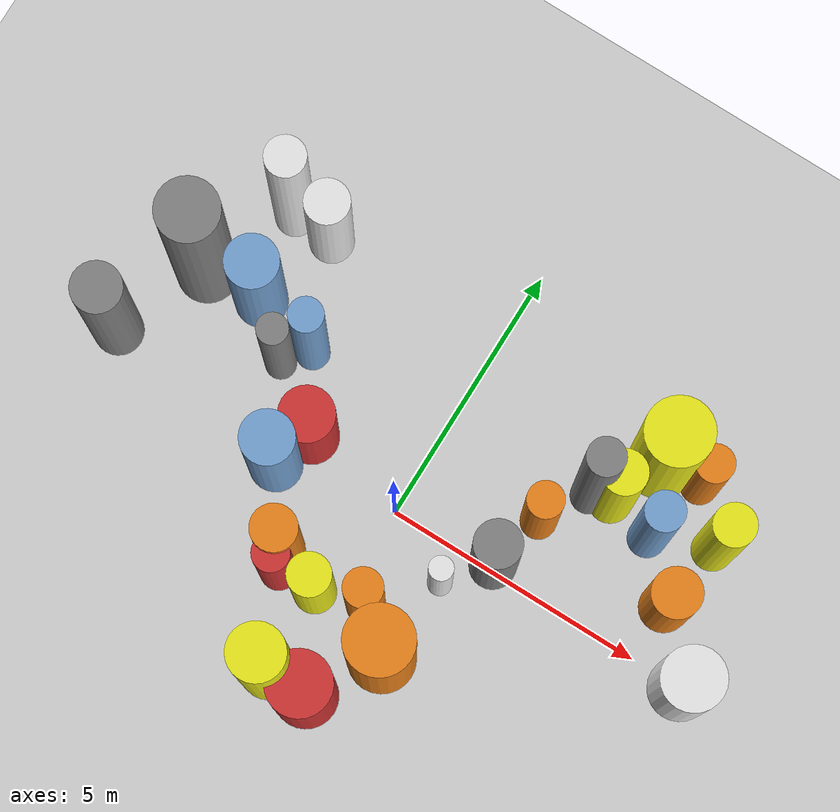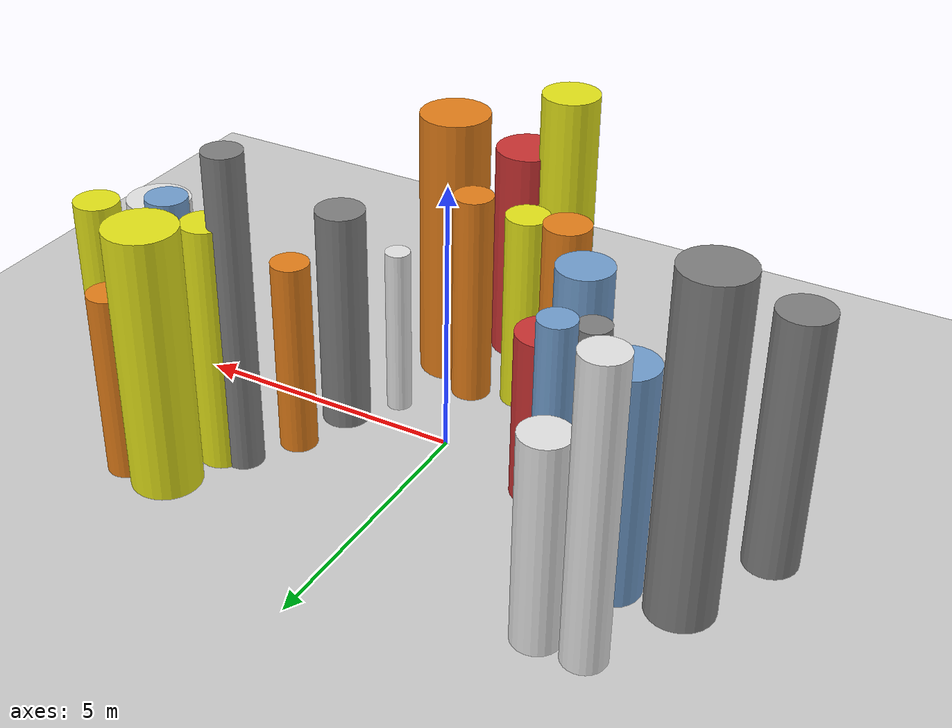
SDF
<?xml version='1.0'?>
<sdf version='1.6'>
  <world name='routeA_rl_v1__dense_recovery__rl_train__s_turn_multi_obstacle__000094'>
    <!-- Sun light -->
    <light name='sun' type='directional'>
      <cast_shadows>1</cast_shadows>
      <pose>0 0 10 0 0 0</pose>
      <diffuse>0.8 0.8 0.8 1</diffuse>
      <specular>0.2 0.2 0.2 1</specular>
      <attenuation>
        <range>1000</range>
        <constant>0.9</constant>
        <linear>0.01</linear>
        <quadratic>0.001</quadratic>
      </attenuation>
      <direction>-0.5 0.1 -0.9</direction>
    </light>

    <!-- Ground plane -->
    <model name='ground_plane'>
      <static>1</static>
      <link name='link'>
        <collision name='collision'>
          <geometry>
            <plane>
              <normal>0 0 1</normal>
              <size>100 100</size>
            </plane>
          </geometry>
          <surface>
            <contact>
              <collide_bitmask>65535</collide_bitmask>
              <ode/>
            </contact>
            <friction>
              <ode>
                <mu>100</mu>
                <mu2>50</mu2>
              </ode>
              <torsional><ode/></torsional>
            </friction>
            <bounce/>
          </surface>
          <max_contacts>10</max_contacts>
        </collision>
        <visual name='visual'>
          <cast_shadows>0</cast_shadows>
          <geometry>
            <plane>
              <normal>0 0 1</normal>
              <size>100 100</size>
            </plane>
          </geometry>
          <material>
            <script>
              <uri>file://media/materials/scripts/gazebo.material</uri>
              <n>Gazebo/Grey</n>
            </script>
          </material>
        </visual>
      </link>
    </model>

    <!-- Environment -->
    <magnetic_field>6e-06 2.3e-05 -4.2e-05</magnetic_field>
    <atmosphere type='adiabatic'/>
    <physics name='default_physics' default='0' type='ode'>
      <gravity>0 0 -9.8</gravity>
      <max_step_size>0.004</max_step_size>
      <real_time_factor>1</real_time_factor>
      <real_time_update_rate>250</real_time_update_rate>
    </physics>
    <scene>
      <ambient>0.4 0.4 0.4 1</ambient>
      <background>0.7 0.7 0.7 1</background>
      <shadows>1</shadows>
    </scene>
    <wind/>
    <spherical_coordinates>
      <surface_model>EARTH_WGS84</surface_model>
      <latitude_deg>0</latitude_deg>
      <longitude_deg>0</longitude_deg>
      <elevation>0</elevation>
      <heading_deg>0</heading_deg>
    </spherical_coordinates>

    <!-- ============ OBSTACLES (28) ============ -->
    <model name='s_turn_obs_0'>
      <static>1</static>
      <link name='link'>
        <visual name='visual'>
          <geometry>
            <cylinder>
              <radius>0.4625</radius>
              <length>4.6389</length>
            </cylinder>
          </geometry>
          <material>
            <script>
              <n>Gazebo/Grey</n>
              <uri>file://media/materials/scripts/gazebo.material</uri>
            </script>
            <ambient>0.5 0.5 0.5 1</ambient>
          </material>
        </visual>
        <collision name='collision'>
          <geometry>
            <cylinder>
              <radius>0.4625</radius>
              <length>4.6389</length>
            </cylinder>
          </geometry>
          <max_contacts>10</max_contacts>
          <surface>
            <contact><ode/></contact>
            <bounce/>
            <friction>
              <ode><mu>1</mu><mu2>1</mu2></ode>
              <torsional><ode/></torsional>
            </friction>
          </surface>
        </collision>
      </link>
      <pose>-6.0000 0.1688 2.3194 0 0 0.0000</pose>
    </model>

    <model name='s_turn_obs_1'>
      <static>1</static>
      <link name='link'>
        <visual name='visual'>
          <geometry>
            <cylinder>
              <radius>0.5721</radius>
              <length>5.9832</length>
            </cylinder>
          </geometry>
          <material>
            <script>
              <n>Gazebo/Grey</n>
              <uri>file://media/materials/scripts/gazebo.material</uri>
            </script>
            <ambient>0.5 0.5 0.5 1</ambient>
          </material>
        </visual>
        <collision name='collision'>
          <geometry>
            <cylinder>
              <radius>0.5721</radius>
              <length>5.9832</length>
            </cylinder>
          </geometry>
          <max_contacts>10</max_contacts>
          <surface>
            <contact><ode/></contact>
            <bounce/>
            <friction>
              <ode><mu>1</mu><mu2>1</mu2></ode>
              <torsional><ode/></torsional>
            </friction>
          </surface>
        </collision>
      </link>
      <pose>-5.2000 1.9225 2.9916 0 0 0.0000</pose>
    </model>

    <model name='s_turn_obs_2'>
      <static>1</static>
      <link name='link'>
        <visual name='visual'>
          <geometry>
            <cylinder>
              <radius>0.3735</radius>
              <length>5.3352</length>
            </cylinder>
          </geometry>
          <material>
            <script>
              <n>Gazebo/White</n>
              <uri>file://media/materials/scripts/gazebo.material</uri>
            </script>
            <ambient>0.9 0.9 0.9 1</ambient>
          </material>
        </visual>
        <collision name='collision'>
          <geometry>
            <cylinder>
              <radius>0.3735</radius>
              <length>5.3352</length>
            </cylinder>
          </geometry>
          <max_contacts>10</max_contacts>
          <surface>
            <contact><ode/></contact>
            <bounce/>
            <friction>
              <ode><mu>1</mu><mu2>1</mu2></ode>
              <torsional><ode/></torsional>
            </friction>
          </surface>
        </collision>
      </link>
      <pose>-4.4000 3.6335 2.6676 0 0 0.0000</pose>
    </model>

    <model name='s_turn_obs_3'>
      <static>1</static>
      <link name='link'>
        <visual name='visual'>
          <geometry>
            <cylinder>
              <radius>0.4163</radius>
              <length>3.7390</length>
            </cylinder>
          </geometry>
          <material>
            <script>
              <n>Gazebo/White</n>
              <uri>file://media/materials/scripts/gazebo.material</uri>
            </script>
            <ambient>0.9 0.9 0.9 1</ambient>
          </material>
        </visual>
        <collision name='collision'>
          <geometry>
            <cylinder>
              <radius>0.4163</radius>
              <length>3.7390</length>
            </cylinder>
          </geometry>
          <max_contacts>10</max_contacts>
          <surface>
            <contact><ode/></contact>
            <bounce/>
            <friction>
              <ode><mu>1</mu><mu2>1</mu2></ode>
              <torsional><ode/></torsional>
            </friction>
          </surface>
        </collision>
      </link>
      <pose>-3.6000 3.5991 1.8695 0 0 0.0000</pose>
    </model>

    <model name='s_turn_obs_4'>
      <static>1</static>
      <link name='link'>
        <visual name='visual'>
          <geometry>
            <cylinder>
              <radius>0.3189</radius>
              <length>4.3099</length>
            </cylinder>
          </geometry>
          <material>
            <script>
              <n>Gazebo/Blue</n>
              <uri>file://media/materials/scripts/gazebo.material</uri>
            </script>
            <ambient>0.447 0.624 0.812 1</ambient>
          </material>
        </visual>
        <collision name='collision'>
          <geometry>
            <cylinder>
              <radius>0.3189</radius>
              <length>4.3099</length>
            </cylinder>
          </geometry>
          <max_contacts>10</max_contacts>
          <surface>
            <contact><ode/></contact>
            <bounce/>
            <friction>
              <ode><mu>1</mu><mu2>1</mu2></ode>
              <torsional><ode/></torsional>
            </friction>
          </surface>
        </collision>
      </link>
      <pose>-2.8000 1.6778 2.1549 0 0 0.0000</pose>
    </model>

    <model name='s_turn_obs_5'>
      <static>1</static>
      <link name='link'>
        <visual name='visual'>
          <geometry>
            <cylinder>
              <radius>0.5085</radius>
              <length>3.1284</length>
            </cylinder>
          </geometry>
          <material>
            <script>
              <n>Gazebo/Red</n>
              <uri>file://media/materials/scripts/gazebo.material</uri>
            </script>
            <ambient>0.8 0.2 0.2 1</ambient>
          </material>
        </visual>
        <collision name='collision'>
          <geometry>
            <cylinder>
              <radius>0.5085</radius>
              <length>3.1284</length>
            </cylinder>
          </geometry>
          <max_contacts>10</max_contacts>
          <surface>
            <contact><ode/></contact>
            <bounce/>
            <friction>
              <ode><mu>1</mu><mu2>1</mu2></ode>
              <torsional><ode/></torsional>
            </friction>
          </surface>
        </collision>
      </link>
      <pose>-2.0000 0.3688 1.5642 0 0 0.0000</pose>
    </model>

    <model name='s_turn_obs_6'>
      <static>1</static>
      <link name='link'>
        <visual name='visual'>
          <geometry>
            <cylinder>
              <radius>0.3388</radius>
              <length>3.7302</length>
            </cylinder>
          </geometry>
          <material>
            <script>
              <n>Gazebo/Red</n>
              <uri>file://media/materials/scripts/gazebo.material</uri>
            </script>
            <ambient>0.8 0.2 0.2 1</ambient>
          </material>
        </visual>
        <collision name='collision'>
          <geometry>
            <cylinder>
              <radius>0.3388</radius>
              <length>3.7302</length>
            </cylinder>
          </geometry>
          <max_contacts>10</max_contacts>
          <surface>
            <contact><ode/></contact>
            <bounce/>
            <friction>
              <ode><mu>1</mu><mu2>1</mu2></ode>
              <torsional><ode/></torsional>
            </friction>
          </surface>
        </collision>
      </link>
      <pose>-1.2000 -2.0162 1.8651 0 0 0.0000</pose>
    </model>

    <model name='s_turn_obs_7'>
      <static>1</static>
      <link name='link'>
        <visual name='visual'>
          <geometry>
            <cylinder>
              <radius>0.5207</radius>
              <length>5.3450</length>
            </cylinder>
          </geometry>
          <material>
            <script>
              <n>Gazebo/Yellow</n>
              <uri>file://media/materials/scripts/gazebo.material</uri>
            </script>
            <ambient>0.9 0.9 0.1 1</ambient>
          </material>
        </visual>
        <collision name='collision'>
          <geometry>
            <cylinder>
              <radius>0.5207</radius>
              <length>5.3450</length>
            </cylinder>
          </geometry>
          <max_contacts>10</max_contacts>
          <surface>
            <contact><ode/></contact>
            <bounce/>
            <friction>
              <ode><mu>1</mu><mu2>1</mu2></ode>
              <torsional><ode/></torsional>
            </friction>
          </surface>
        </collision>
      </link>
      <pose>-0.4000 -3.6158 2.6725 0 0 0.0000</pose>
    </model>

    <model name='s_turn_obs_8'>
      <static>1</static>
      <link name='link'>
        <visual name='visual'>
          <geometry>
            <cylinder>
              <radius>0.5943</radius>
              <length>4.1238</length>
            </cylinder>
          </geometry>
          <material>
            <script>
              <n>Gazebo/Red</n>
              <uri>file://media/materials/scripts/gazebo.material</uri>
            </script>
            <ambient>0.8 0.2 0.2 1</ambient>
          </material>
        </visual>
        <collision name='collision'>
          <geometry>
            <cylinder>
              <radius>0.5943</radius>
              <length>4.1238</length>
            </cylinder>
          </geometry>
          <max_contacts>10</max_contacts>
          <surface>
            <contact><ode/></contact>
            <bounce/>
            <friction>
              <ode><mu>1</mu><mu2>1</mu2></ode>
              <torsional><ode/></torsional>
            </friction>
          </surface>
        </collision>
      </link>
      <pose>0.4000 -3.6416 2.0619 0 0 0.0000</pose>
    </model>

    <model name='s_turn_obs_9'>
      <static>1</static>
      <link name='link'>
        <visual name='visual'>
          <geometry>
            <cylinder>
              <radius>0.6272</radius>
              <length>5.1122</length>
            </cylinder>
          </geometry>
          <material>
            <script>
              <n>Gazebo/Orange</n>
              <uri>file://media/materials/scripts/gazebo.material</uri>
            </script>
            <ambient>0.9 0.5 0.1 1</ambient>
          </material>
        </visual>
        <collision name='collision'>
          <geometry>
            <cylinder>
              <radius>0.6272</radius>
              <length>5.1122</length>
            </cylinder>
          </geometry>
          <max_contacts>10</max_contacts>
          <surface>
            <contact><ode/></contact>
            <bounce/>
            <friction>
              <ode><mu>1</mu><mu2>1</mu2></ode>
              <torsional><ode/></torsional>
            </friction>
          </surface>
        </collision>
      </link>
      <pose>1.2000 -2.3657 2.5561 0 0 0.0000</pose>
    </model>

    <model name='s_turn_obs_10'>
      <static>1</static>
      <link name='link'>
        <visual name='visual'>
          <geometry>
            <cylinder>
              <radius>0.4339</radius>
              <length>4.1385</length>
            </cylinder>
          </geometry>
          <material>
            <script>
              <n>Gazebo/Grey</n>
              <uri>file://media/materials/scripts/gazebo.material</uri>
            </script>
            <ambient>0.5 0.5 0.5 1</ambient>
          </material>
        </visual>
        <collision name='collision'>
          <geometry>
            <cylinder>
              <radius>0.4339</radius>
              <length>4.1385</length>
            </cylinder>
          </geometry>
          <max_contacts>10</max_contacts>
          <surface>
            <contact><ode/></contact>
            <bounce/>
            <friction>
              <ode><mu>1</mu><mu2>1</mu2></ode>
              <torsional><ode/></torsional>
            </friction>
          </surface>
        </collision>
      </link>
      <pose>2.0000 0.1138 2.0692 0 0 0.0000</pose>
    </model>

    <model name='s_turn_obs_11'>
      <static>1</static>
      <link name='link'>
        <visual name='visual'>
          <geometry>
            <cylinder>
              <radius>0.3423</radius>
              <length>5.8359</length>
            </cylinder>
          </geometry>
          <material>
            <script>
              <n>Gazebo/Grey</n>
              <uri>file://media/materials/scripts/gazebo.material</uri>
            </script>
            <ambient>0.5 0.5 0.5 1</ambient>
          </material>
        </visual>
        <collision name='collision'>
          <geometry>
            <cylinder>
              <radius>0.3423</radius>
              <length>5.8359</length>
            </cylinder>
          </geometry>
          <max_contacts>10</max_contacts>
          <surface>
            <contact><ode/></contact>
            <bounce/>
            <friction>
              <ode><mu>1</mu><mu2>1</mu2></ode>
              <torsional><ode/></torsional>
            </friction>
          </surface>
        </collision>
      </link>
      <pose>2.8000 2.1082 2.9180 0 0 0.0000</pose>
    </model>

    <model name='s_turn_obs_12'>
      <static>1</static>
      <link name='link'>
        <visual name='visual'>
          <geometry>
            <cylinder>
              <radius>0.6175</radius>
              <length>4.8262</length>
            </cylinder>
          </geometry>
          <material>
            <script>
              <n>Gazebo/Yellow</n>
              <uri>file://media/materials/scripts/gazebo.material</uri>
            </script>
            <ambient>0.9 0.9 0.1 1</ambient>
          </material>
        </visual>
        <collision name='collision'>
          <geometry>
            <cylinder>
              <radius>0.6175</radius>
              <length>4.8262</length>
            </cylinder>
          </geometry>
          <max_contacts>10</max_contacts>
          <surface>
            <contact><ode/></contact>
            <bounce/>
            <friction>
              <ode><mu>1</mu><mu2>1</mu2></ode>
              <torsional><ode/></torsional>
            </friction>
          </surface>
        </collision>
      </link>
      <pose>3.6000 3.2498 2.4131 0 0 0.0000</pose>
    </model>

    <model name='s_turn_obs_13'>
      <static>1</static>
      <link name='link'>
        <visual name='visual'>
          <geometry>
            <cylinder>
              <radius>0.3477</radius>
              <length>3.4438</length>
            </cylinder>
          </geometry>
          <material>
            <script>
              <n>Gazebo/Orange</n>
              <uri>file://media/materials/scripts/gazebo.material</uri>
            </script>
            <ambient>0.9 0.5 0.1 1</ambient>
          </material>
        </visual>
        <collision name='collision'>
          <geometry>
            <cylinder>
              <radius>0.3477</radius>
              <length>3.4438</length>
            </cylinder>
          </geometry>
          <max_contacts>10</max_contacts>
          <surface>
            <contact><ode/></contact>
            <bounce/>
            <friction>
              <ode><mu>1</mu><mu2>1</mu2></ode>
              <torsional><ode/></torsional>
            </friction>
          </surface>
        </collision>
      </link>
      <pose>4.4000 3.3093 1.7219 0 0 0.0000</pose>
    </model>

    <model name='s_turn_obs_14'>
      <static>1</static>
      <link name='link'>
        <visual name='visual'>
          <geometry>
            <cylinder>
              <radius>0.3871</radius>
              <length>4.5110</length>
            </cylinder>
          </geometry>
          <material>
            <script>
              <n>Gazebo/Yellow</n>
              <uri>file://media/materials/scripts/gazebo.material</uri>
            </script>
            <ambient>0.9 0.9 0.1 1</ambient>
          </material>
        </visual>
        <collision name='collision'>
          <geometry>
            <cylinder>
              <radius>0.3871</radius>
              <length>4.5110</length>
            </cylinder>
          </geometry>
          <max_contacts>10</max_contacts>
          <surface>
            <contact><ode/></contact>
            <bounce/>
            <friction>
              <ode><mu>1</mu><mu2>1</mu2></ode>
              <torsional><ode/></torsional>
            </friction>
          </surface>
        </collision>
      </link>
      <pose>5.2000 2.4418 2.2555 0 0 0.0000</pose>
    </model>

    <model name='s_turn_obs_15'>
      <static>1</static>
      <link name='link'>
        <visual name='visual'>
          <geometry>
            <cylinder>
              <radius>0.5892</radius>
              <length>3.2807</length>
            </cylinder>
          </geometry>
          <material>
            <script>
              <n>Gazebo/White</n>
              <uri>file://media/materials/scripts/gazebo.material</uri>
            </script>
            <ambient>0.9 0.9 0.9 1</ambient>
          </material>
        </visual>
        <collision name='collision'>
          <geometry>
            <cylinder>
              <radius>0.5892</radius>
              <length>3.2807</length>
            </cylinder>
          </geometry>
          <max_contacts>10</max_contacts>
          <surface>
            <contact><ode/></contact>
            <bounce/>
            <friction>
              <ode><mu>1</mu><mu2>1</mu2></ode>
              <torsional><ode/></torsional>
            </friction>
          </surface>
        </collision>
      </link>
      <pose>6.0000 0.0033 1.6404 0 0 0.0000</pose>
    </model>

    <model name='s_turn_obs2_0'>
      <static>1</static>
      <link name='link'>
        <visual name='visual'>
          <geometry>
            <cylinder>
              <radius>0.2130</radius>
              <length>3.8375</length>
            </cylinder>
          </geometry>
          <material>
            <script>
              <n>Gazebo/Grey</n>
              <uri>file://media/materials/scripts/gazebo.material</uri>
            </script>
            <ambient>0.5 0.5 0.5 1</ambient>
          </material>
        </visual>
        <collision name='collision'>
          <geometry>
            <cylinder>
              <radius>0.2130</radius>
              <length>3.8375</length>
            </cylinder>
          </geometry>
          <max_contacts>10</max_contacts>
          <surface>
            <contact><ode/></contact>
            <bounce/>
            <friction>
              <ode><mu>1</mu><mu2>1</mu2></ode>
              <torsional><ode/></torsional>
            </friction>
          </surface>
        </collision>
      </link>
      <pose>-5.0000 1.8205 1.9187 0 0 0.0000</pose>
    </model>

    <model name='s_turn_obs2_1'>
      <static>1</static>
      <link name='link'>
        <visual name='visual'>
          <geometry>
            <cylinder>
              <radius>0.4888</radius>
              <length>4.1262</length>
            </cylinder>
          </geometry>
          <material>
            <script>
              <n>Gazebo/Blue</n>
              <uri>file://media/materials/scripts/gazebo.material</uri>
            </script>
            <ambient>0.447 0.624 0.812 1</ambient>
          </material>
        </visual>
        <collision name='collision'>
          <geometry>
            <cylinder>
              <radius>0.4888</radius>
              <length>4.1262</length>
            </cylinder>
          </geometry>
          <max_contacts>10</max_contacts>
          <surface>
            <contact><ode/></contact>
            <bounce/>
            <friction>
              <ode><mu>1</mu><mu2>1</mu2></ode>
              <torsional><ode/></torsional>
            </friction>
          </surface>
        </collision>
      </link>
      <pose>-4.0909 1.9900 2.0631 0 0 0.0000</pose>
    </model>

    <model name='s_turn_obs2_2'>
      <static>1</static>
      <link name='link'>
        <visual name='visual'>
          <geometry>
            <cylinder>
              <radius>0.2883</radius>
              <length>4.0640</length>
            </cylinder>
          </geometry>
          <material>
            <script>
              <n>Gazebo/Grey</n>
              <uri>file://media/materials/scripts/gazebo.material</uri>
            </script>
            <ambient>0.5 0.5 0.5 1</ambient>
          </material>
        </visual>
        <collision name='collision'>
          <geometry>
            <cylinder>
              <radius>0.2883</radius>
              <length>4.0640</length>
            </cylinder>
          </geometry>
          <max_contacts>10</max_contacts>
          <surface>
            <contact><ode/></contact>
            <bounce/>
            <friction>
              <ode><mu>1</mu><mu2>1</mu2></ode>
              <torsional><ode/></torsional>
            </friction>
          </surface>
        </collision>
      </link>
      <pose>-3.1818 1.2034 2.0320 0 0 0.0000</pose>
    </model>

    <model name='s_turn_obs2_3'>
      <static>1</static>
      <link name='link'>
        <visual name='visual'>
          <geometry>
            <cylinder>
              <radius>0.4930</radius>
              <length>4.0202</length>
            </cylinder>
          </geometry>
          <material>
            <script>
              <n>Gazebo/Blue</n>
              <uri>file://media/materials/scripts/gazebo.material</uri>
            </script>
            <ambient>0.447 0.624 0.812 1</ambient>
          </material>
        </visual>
        <collision name='collision'>
          <geometry>
            <cylinder>
              <radius>0.4930</radius>
              <length>4.0202</length>
            </cylinder>
          </geometry>
          <max_contacts>10</max_contacts>
          <surface>
            <contact><ode/></contact>
            <bounce/>
            <friction>
              <ode><mu>1</mu><mu2>1</mu2></ode>
              <torsional><ode/></torsional>
            </friction>
          </surface>
        </collision>
      </link>
      <pose>-2.2727 -0.4070 2.0101 0 0 0.0000</pose>
    </model>

    <model name='s_turn_obs2_4'>
      <static>1</static>
      <link name='link'>
        <visual name='visual'>
          <geometry>
            <cylinder>
              <radius>0.4229</radius>
              <length>3.9576</length>
            </cylinder>
          </geometry>
          <material>
            <script>
              <n>Gazebo/Orange</n>
              <uri>file://media/materials/scripts/gazebo.material</uri>
            </script>
            <ambient>0.9 0.5 0.1 1</ambient>
          </material>
        </visual>
        <collision name='collision'>
          <geometry>
            <cylinder>
              <radius>0.4229</radius>
              <length>3.9576</length>
            </cylinder>
          </geometry>
          <max_contacts>10</max_contacts>
          <surface>
            <contact><ode/></contact>
            <bounce/>
            <friction>
              <ode><mu>1</mu><mu2>1</mu2></ode>
              <torsional><ode/></torsional>
            </friction>
          </surface>
        </collision>
      </link>
      <pose>-1.3636 -1.6411 1.9788 0 0 0.0000</pose>
    </model>

    <model name='s_turn_obs2_5'>
      <static>1</static>
      <link name='link'>
        <visual name='visual'>
          <geometry>
            <cylinder>
              <radius>0.3958</radius>
              <length>3.7334</length>
            </cylinder>
          </geometry>
          <material>
            <script>
              <n>Gazebo/Yellow</n>
              <uri>file://media/materials/scripts/gazebo.material</uri>
            </script>
            <ambient>0.9 0.9 0.1 1</ambient>
          </material>
        </visual>
        <collision name='collision'>
          <geometry>
            <cylinder>
              <radius>0.3958</radius>
              <length>3.7334</length>
            </cylinder>
          </geometry>
          <max_contacts>10</max_contacts>
          <surface>
            <contact><ode/></contact>
            <bounce/>
            <friction>
              <ode><mu>1</mu><mu2>1</mu2></ode>
              <torsional><ode/></torsional>
            </friction>
          </surface>
        </collision>
      </link>
      <pose>-0.4545 -1.9818 1.8667 0 0 0.0000</pose>
    </model>

    <model name='s_turn_obs2_6'>
      <static>1</static>
      <link name='link'>
        <visual name='visual'>
          <geometry>
            <cylinder>
              <radius>0.3594</radius>
              <length>4.0024</length>
            </cylinder>
          </geometry>
          <material>
            <script>
              <n>Gazebo/Orange</n>
              <uri>file://media/materials/scripts/gazebo.material</uri>
            </script>
            <ambient>0.9 0.5 0.1 1</ambient>
          </material>
        </visual>
        <collision name='collision'>
          <geometry>
            <cylinder>
              <radius>0.3594</radius>
              <length>4.0024</length>
            </cylinder>
          </geometry>
          <max_contacts>10</max_contacts>
          <surface>
            <contact><ode/></contact>
            <bounce/>
            <friction>
              <ode><mu>1</mu><mu2>1</mu2></ode>
              <torsional><ode/></torsional>
            </friction>
          </surface>
        </collision>
      </link>
      <pose>0.4545 -1.7040 2.0012 0 0 0.0000</pose>
    </model>

    <model name='s_turn_obs2_7'>
      <static>1</static>
      <link name='link'>
        <visual name='visual'>
          <geometry>
            <cylinder>
              <radius>0.2253</radius>
              <length>3.1487</length>
            </cylinder>
          </geometry>
          <material>
            <script>
              <n>Gazebo/White</n>
              <uri>file://media/materials/scripts/gazebo.material</uri>
            </script>
            <ambient>0.9 0.9 0.9 1</ambient>
          </material>
        </visual>
        <collision name='collision'>
          <geometry>
            <cylinder>
              <radius>0.2253</radius>
              <length>3.1487</length>
            </cylinder>
          </geometry>
          <max_contacts>10</max_contacts>
          <surface>
            <contact><ode/></contact>
            <bounce/>
            <friction>
              <ode><mu>1</mu><mu2>1</mu2></ode>
              <torsional><ode/></torsional>
            </friction>
          </surface>
        </collision>
      </link>
      <pose>1.3636 -0.6639 1.5744 0 0 0.0000</pose>
    </model>

    <model name='s_turn_obs2_8'>
      <static>1</static>
      <link name='link'>
        <visual name='visual'>
          <geometry>
            <cylinder>
              <radius>0.3357</radius>
              <length>3.5978</length>
            </cylinder>
          </geometry>
          <material>
            <script>
              <n>Gazebo/Orange</n>
              <uri>file://media/materials/scripts/gazebo.material</uri>
            </script>
            <ambient>0.9 0.5 0.1 1</ambient>
          </material>
        </visual>
        <collision name='collision'>
          <geometry>
            <cylinder>
              <radius>0.3357</radius>
              <length>3.5978</length>
            </cylinder>
          </geometry>
          <max_contacts>10</max_contacts>
          <surface>
            <contact><ode/></contact>
            <bounce/>
            <friction>
              <ode><mu>1</mu><mu2>1</mu2></ode>
              <torsional><ode/></torsional>
            </friction>
          </surface>
        </collision>
      </link>
      <pose>2.2727 1.2322 1.7989 0 0 0.0000</pose>
    </model>

    <model name='s_turn_obs2_9'>
      <static>1</static>
      <link name='link'>
        <visual name='visual'>
          <geometry>
            <cylinder>
              <radius>0.4048</radius>
              <length>4.5445</length>
            </cylinder>
          </geometry>
          <material>
            <script>
              <n>Gazebo/Yellow</n>
              <uri>file://media/materials/scripts/gazebo.material</uri>
            </script>
            <ambient>0.9 0.9 0.1 1</ambient>
          </material>
        </visual>
        <collision name='collision'>
          <geometry>
            <cylinder>
              <radius>0.4048</radius>
              <length>4.5445</length>
            </cylinder>
          </geometry>
          <max_contacts>10</max_contacts>
          <surface>
            <contact><ode/></contact>
            <bounce/>
            <friction>
              <ode><mu>1</mu><mu2>1</mu2></ode>
              <torsional><ode/></torsional>
            </friction>
          </surface>
        </collision>
      </link>
      <pose>3.1818 2.2237 2.2723 0 0 0.0000</pose>
    </model>

    <model name='s_turn_obs2_10'>
      <static>1</static>
      <link name='link'>
        <visual name='visual'>
          <geometry>
            <cylinder>
              <radius>0.3600</radius>
              <length>4.6711</length>
            </cylinder>
          </geometry>
          <material>
            <script>
              <n>Gazebo/Blue</n>
              <uri>file://media/materials/scripts/gazebo.material</uri>
            </script>
            <ambient>0.447 0.624 0.812 1</ambient>
          </material>
        </visual>
        <collision name='collision'>
          <geometry>
            <cylinder>
              <radius>0.3600</radius>
              <length>4.6711</length>
            </cylinder>
          </geometry>
          <max_contacts>10</max_contacts>
          <surface>
            <contact><ode/></contact>
            <bounce/>
            <friction>
              <ode><mu>1</mu><mu2>1</mu2></ode>
              <torsional><ode/></torsional>
            </friction>
          </surface>
        </collision>
      </link>
      <pose>4.0909 2.0024 2.3356 0 0 0.0000</pose>
    </model>

    <model name='s_turn_obs2_11'>
      <static>1</static>
      <link name='link'>
        <visual name='visual'>
          <geometry>
            <cylinder>
              <radius>0.4585</radius>
              <length>3.2876</length>
            </cylinder>
          </geometry>
          <material>
            <script>
              <n>Gazebo/Orange</n>
              <uri>file://media/materials/scripts/gazebo.material</uri>
            </script>
            <ambient>0.9 0.5 0.1 1</ambient>
          </material>
        </visual>
        <collision name='collision'>
          <geometry>
            <cylinder>
              <radius>0.4585</radius>
              <length>3.2876</length>
            </cylinder>
          </geometry>
          <max_contacts>10</max_contacts>
          <surface>
            <contact><ode/></contact>
            <bounce/>
            <friction>
              <ode><mu>1</mu><mu2>1</mu2></ode>
              <torsional><ode/></torsional>
            </friction>
          </surface>
        </collision>
      </link>
      <pose>5.0000 1.0954 1.6438 0 0 0.0000</pose>
    </model>

    <!-- GUI camera -->
    <gui fullscreen='0'>
      <camera name='user_camera'>
        <pose>-15 0 18 0 0.85 0.15</pose>
        <view_controller>orbit</view_controller>
        <projection_type>perspective</projection_type>
      </camera>
    </gui>
  </world>
</sdf>
